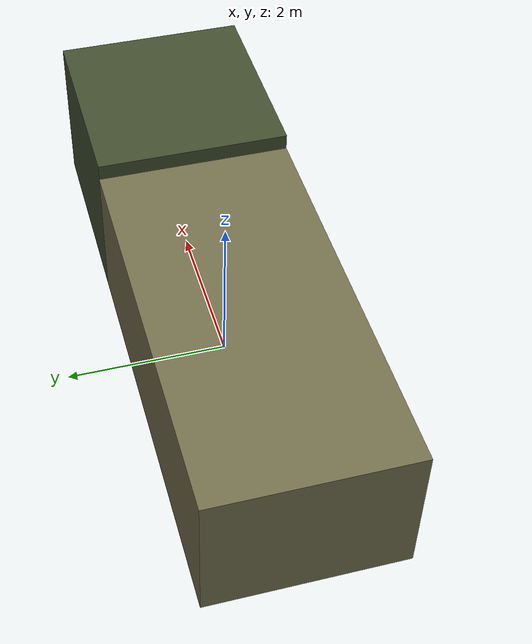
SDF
<?xml version="1.0" ?>
<sdf version="1.9">
  <model name="military_truck">
    <static>true</static>
    <pose>0 0 1.0 0 0 0</pose>
    <link name="body">
      <!-- Cab: 2.5 x 2.4 x 2.0m (front) -->
      <visual name="cab">
        <pose>2.75 0 0 0 0 0</pose>
        <geometry><box><size>2.5 2.4 2.0</size></box></geometry>
        <material>
          <ambient>0.2 0.25 0.15 1</ambient>
          <diffuse>0.25 0.3 0.18 1</diffuse>
        </material>
      </visual>
      <!-- Cargo bed: 5.0 x 2.4 x 1.8m (rear, lighter khaki) -->
      <visual name="cargo">
        <pose>-1.0 0 -0.1 0 0 0</pose>
        <geometry><box><size>5.0 2.4 1.8</size></box></geometry>
        <material>
          <ambient>0.35 0.35 0.25 1</ambient>
          <diffuse>0.45 0.43 0.30 1</diffuse>
        </material>
      </visual>
      <collision name="collision">
        <geometry><box><size>8.0 2.4 2.0</size></box></geometry>
      </collision>
    </link>
  </model>
</sdf>
